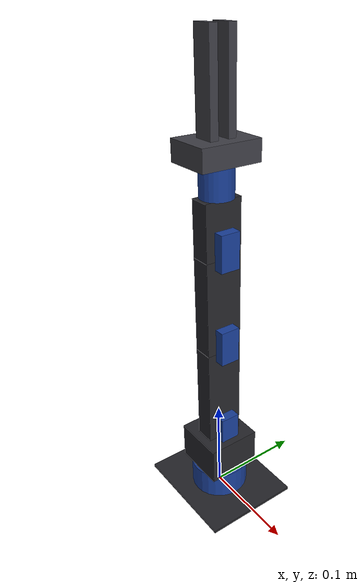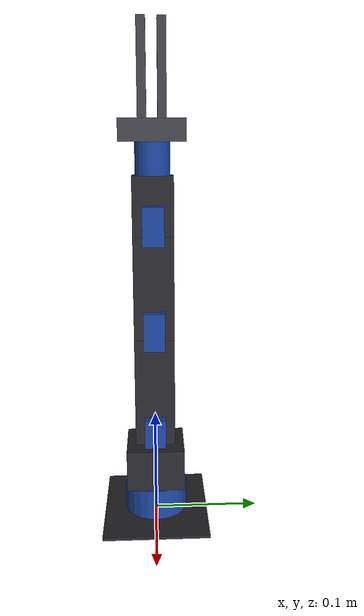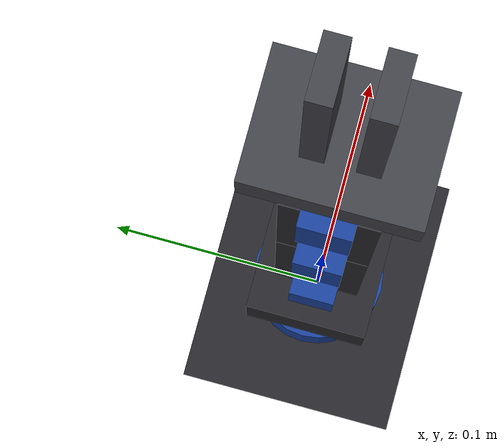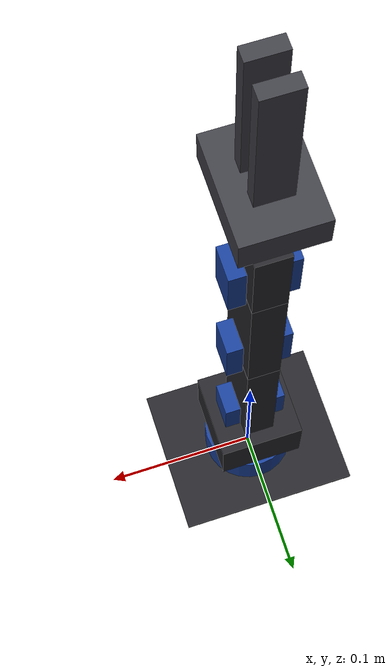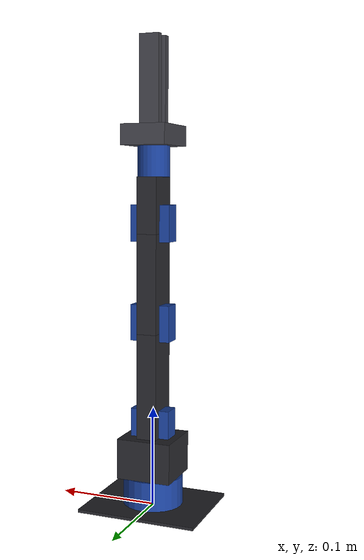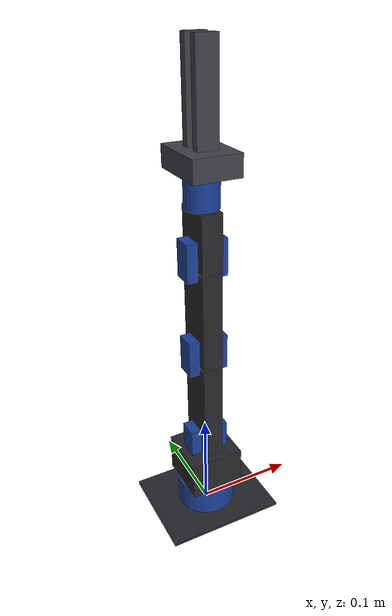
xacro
<?xml version="1.0"?>
<!-- Thin wrapper so MoveItConfigsBuilder finds the robot model in this package
     while the single source of truth stays in botx_description. -->
<robot xmlns:xacro="http://www.ros.org/wiki/xacro" name="botx_arm">
  <xacro:include filename="$(find botx_description)/urdf/botx_arm.urdf.xacro"/>
</robot>

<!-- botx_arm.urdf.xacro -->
<robot xmlns:xacro="http://www.ros.org/wiki/xacro" name="botx_arm">

  <!-- ================= dimensions (meters) - EDIT TO MATCH YOUR BUILD ================= -->
  <xacro:property name="turntable_height"   value="0.032"/> <!-- base plate top -> yaw platform -->
  <xacro:property name="shoulder_height"    value="0.040"/> <!-- yaw platform -> shoulder axis -->
  <xacro:property name="upper_arm_length"   value="0.105"/> <!-- shoulder axis -> elbow axis -->
  <xacro:property name="forearm_length"     value="0.098"/> <!-- elbow axis -> wrist pitch axis -->
  <xacro:property name="wrist_length"       value="0.055"/> <!-- wrist pitch axis -> roll flange -->
  <xacro:property name="gripper_base_length" value="0.030"/> <!-- roll flange -> gripper body -->
  <xacro:property name="finger_length"      value="0.085"/> <!-- gripper body -> fingertip -->
  <xacro:property name="finger_travel"      value="0.0225"/> <!-- per-finger slide; 55mm max opening -->

  <xacro:property name="joint_effort"   value="1.0"/>   <!-- ~10 kg-cm MG996R -> ~1.0 Nm -->
  <xacro:property name="joint_velocity" value="2.0"/>   <!-- rad/s, conservative for smooth demos -->

  <!-- ================= materials ================= -->
  <material name="aluminum_black">
    <color rgba="0.15 0.15 0.17 1.0"/>
  </material>
  <material name="servo_blue">
    <color rgba="0.10 0.25 0.60 1.0"/>
  </material>
  <material name="claw_dark">
    <color rgba="0.25 0.25 0.28 1.0"/>
  </material>

  <!-- ================= helper macros ================= -->
  <xacro:macro name="box_inertial" params="mass x y z">
    <inertial>
      <mass value="${mass}"/>
      <inertia ixx="${mass*(y*y+z*z)/12.0}" iyy="${mass*(x*x+z*z)/12.0}"
               izz="${mass*(x*x+y*y)/12.0}" ixy="0" ixz="0" iyz="0"/>
    </inertial>
  </xacro:macro>

  <!-- an aluminum U-channel segment drawn as a box, origin at its bottom, extending +Z -->
  <xacro:macro name="arm_segment" params="name length mass">
    <link name="${name}">
      <visual>
        <origin xyz="0 0 ${length/2}"/>
        <geometry><box size="0.020 0.038 ${length}"/></geometry>
        <material name="aluminum_black"/>
      </visual>
      <!-- servo body at the joint end -->
      <visual>
        <origin xyz="0 0 0.010"/>
        <geometry><box size="0.040 0.020 0.036"/></geometry>
        <material name="servo_blue"/>
      </visual>
      <collision>
        <origin xyz="0 0 ${length/2}"/>
        <geometry><box size="0.045 0.045 ${length}"/></geometry>
      </collision>
      <xacro:box_inertial mass="${mass}" x="0.02" y="0.038" z="${length}"/>
    </link>
  </xacro:macro>

  <!-- ================= world / base ================= -->
  <link name="base_link">
    <visual> <!-- base plate (U-beam base) -->
      <origin xyz="0 0 0.0015"/>
      <geometry><box size="0.120 0.100 0.003"/></geometry>
      <material name="aluminum_black"/>
    </visual>
    <visual> <!-- turntable / waist servo housing -->
      <origin xyz="0 0 ${turntable_height/2}"/>
      <geometry><cylinder radius="0.030" length="${turntable_height}"/></geometry>
      <material name="servo_blue"/>
    </visual>
    <collision>
      <origin xyz="0 0 ${turntable_height/2}"/>
      <geometry><box size="0.120 0.100 ${turntable_height}"/></geometry>
    </collision>
    <xacro:box_inertial mass="0.25" x="0.12" y="0.10" z="${turntable_height}"/>
  </link>

  <!-- ================= J1: base yaw (waist) - PCA9685 channel 0 ================= -->
  <joint name="base_yaw_joint" type="revolute">
    <parent link="base_link"/>
    <child link="shoulder_mount"/>
    <origin xyz="0 0 ${turntable_height}"/>
    <axis xyz="0 0 1"/>
    <limit lower="${-pi/2}" upper="${pi/2}" effort="${joint_effort}" velocity="${joint_velocity}"/>
  </joint>

  <link name="shoulder_mount"> <!-- rotating platform + shoulder U-bracket -->
    <visual>
      <origin xyz="0 0 ${shoulder_height/2}"/>
      <geometry><box size="0.055 0.055 ${shoulder_height}"/></geometry>
      <material name="aluminum_black"/>
    </visual>
    <collision>
      <origin xyz="0 0 ${shoulder_height/2}"/>
      <geometry><box size="0.055 0.055 ${shoulder_height}"/></geometry>
    </collision>
    <xacro:box_inertial mass="0.10" x="0.055" y="0.055" z="${shoulder_height}"/>
  </link>

  <!-- ================= J2: shoulder pitch - channel 1 ================= -->
  <joint name="shoulder_pitch_joint" type="revolute">
    <parent link="shoulder_mount"/>
    <child link="upper_arm"/>
    <origin xyz="0 0 ${shoulder_height}"/>
    <axis xyz="0 1 0"/>
    <limit lower="${-pi/2}" upper="${pi/2}" effort="${joint_effort}" velocity="${joint_velocity}"/>
  </joint>
  <xacro:arm_segment name="upper_arm" length="${upper_arm_length}" mass="0.12"/>

  <!-- ================= J3: elbow pitch - channel 2 ================= -->
  <joint name="elbow_pitch_joint" type="revolute">
    <parent link="upper_arm"/>
    <child link="forearm"/>
    <origin xyz="0 0 ${upper_arm_length}"/>
    <axis xyz="0 1 0"/>
    <limit lower="${-pi/2}" upper="${pi/2}" effort="${joint_effort}" velocity="${joint_velocity}"/>
  </joint>
  <xacro:arm_segment name="forearm" length="${forearm_length}" mass="0.10"/>

  <!-- ================= J4: wrist pitch - channel 3 ================= -->
  <joint name="wrist_pitch_joint" type="revolute">
    <parent link="forearm"/>
    <child link="wrist"/>
    <origin xyz="0 0 ${forearm_length}"/>
    <axis xyz="0 1 0"/>
    <limit lower="${-pi/2}" upper="${pi/2}" effort="${joint_effort}" velocity="${joint_velocity}"/>
  </joint>
  <xacro:arm_segment name="wrist" length="${wrist_length}" mass="0.08"/>

  <!-- ================= J5: wrist roll - channel 4 ================= -->
  <joint name="wrist_roll_joint" type="revolute">
    <parent link="wrist"/>
    <child link="roll_flange"/>
    <origin xyz="0 0 ${wrist_length}"/>
    <axis xyz="0 0 1"/>
    <limit lower="${-pi/2}" upper="${pi/2}" effort="${joint_effort}" velocity="${joint_velocity}"/>
  </joint>

  <link name="roll_flange">
    <visual>
      <origin xyz="0 0 ${gripper_base_length/2}"/>
      <geometry><cylinder radius="0.016" length="${gripper_base_length}"/></geometry>
      <material name="servo_blue"/>
    </visual>
    <collision>
      <origin xyz="0 0 ${gripper_base_length/2}"/>
      <geometry><cylinder radius="0.020" length="${gripper_base_length}"/></geometry>
    </collision>
    <xacro:box_inertial mass="0.06" x="0.032" y="0.032" z="${gripper_base_length}"/>
  </link>

  <!-- ================= gripper body (fixed) ================= -->
  <joint name="gripper_base_joint" type="fixed">
    <parent link="roll_flange"/>
    <child link="gripper_base"/>
    <origin xyz="0 0 ${gripper_base_length}"/>
  </joint>

  <link name="gripper_base">
    <visual>
      <origin xyz="0 0 0.010"/>
      <geometry><box size="0.045 0.060 0.020"/></geometry>
      <material name="claw_dark"/>
    </visual>
    <collision>
      <origin xyz="0 0 0.010"/>
      <geometry><box size="0.045 0.060 0.020"/></geometry>
    </collision>
    <xacro:box_inertial mass="0.08" x="0.045" y="0.06" z="0.02"/>
  </link>

  <xacro:macro name="finger" params="name reflect">
    <link name="${name}">
      <visual>
        <origin xyz="0 ${reflect*0.004} ${finger_length/2}"/>
        <geometry><box size="0.020 0.008 ${finger_length}"/></geometry>
        <material name="claw_dark"/>
      </visual>
      <collision>
        <origin xyz="0 ${reflect*0.004} ${finger_length/2}"/>
        <geometry><box size="0.020 0.008 ${finger_length}"/></geometry>
      </collision>
      <xacro:box_inertial mass="0.02" x="0.02" y="0.008" z="${finger_length}"/>
    </link>
  </xacro:macro>
  <xacro:finger name="finger_left" reflect="1"/>
  <xacro:finger name="finger_right" reflect="-1"/>

  <joint name="gripper_joint" type="prismatic">
    <parent link="gripper_base"/>
    <child link="finger_left"/>
    <origin xyz="0 0.005 0.020"/>
    <axis xyz="0 1 0"/>
    <limit lower="0" upper="${finger_travel}" effort="${joint_effort}" velocity="0.05"/>
  </joint>

  <joint name="gripper_mirror_joint" type="prismatic">
    <parent link="gripper_base"/>
    <child link="finger_right"/>
    <origin xyz="0 -0.005 0.020"/>
    <axis xyz="0 -1 0"/>
    <limit lower="0" upper="${finger_travel}" effort="${joint_effort}" velocity="0.05"/>
    <mimic joint="gripper_joint" multiplier="1.0" offset="0.0"/>
  </joint>

  <!-- ================= tool frame (TCP between the fingertips) ================= -->
  <joint name="tool0_joint" type="fixed">
    <parent link="gripper_base"/>
    <child link="tool0"/>
    <origin xyz="0 0 ${0.020 + finger_length - 0.010}"/>
  </joint>
  <link name="tool0"/>

</robot>
